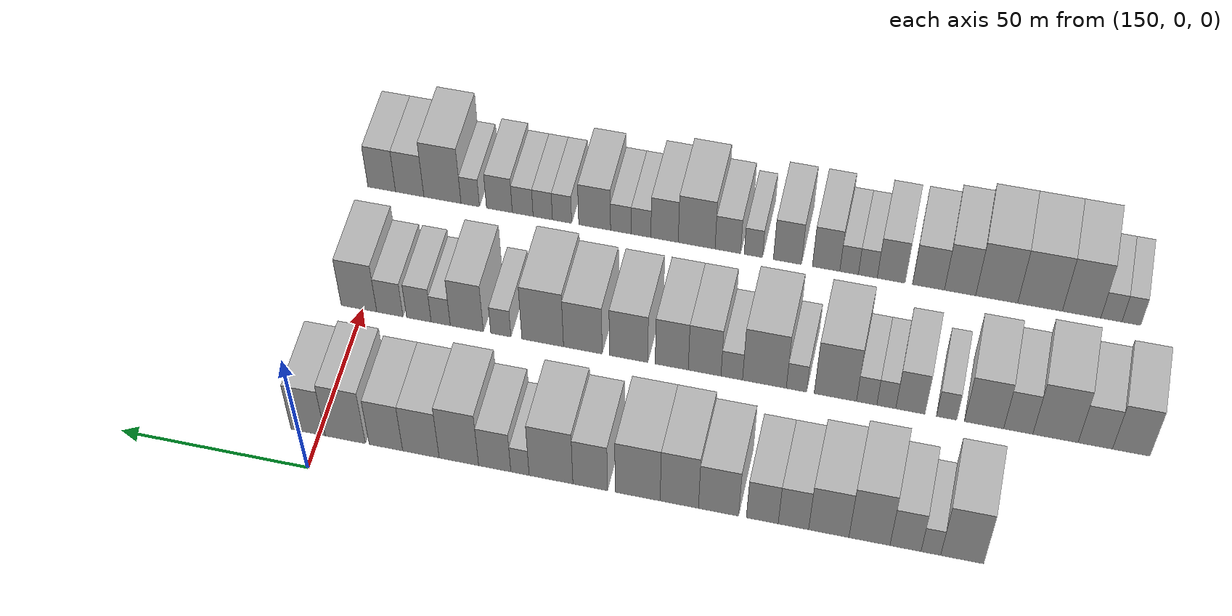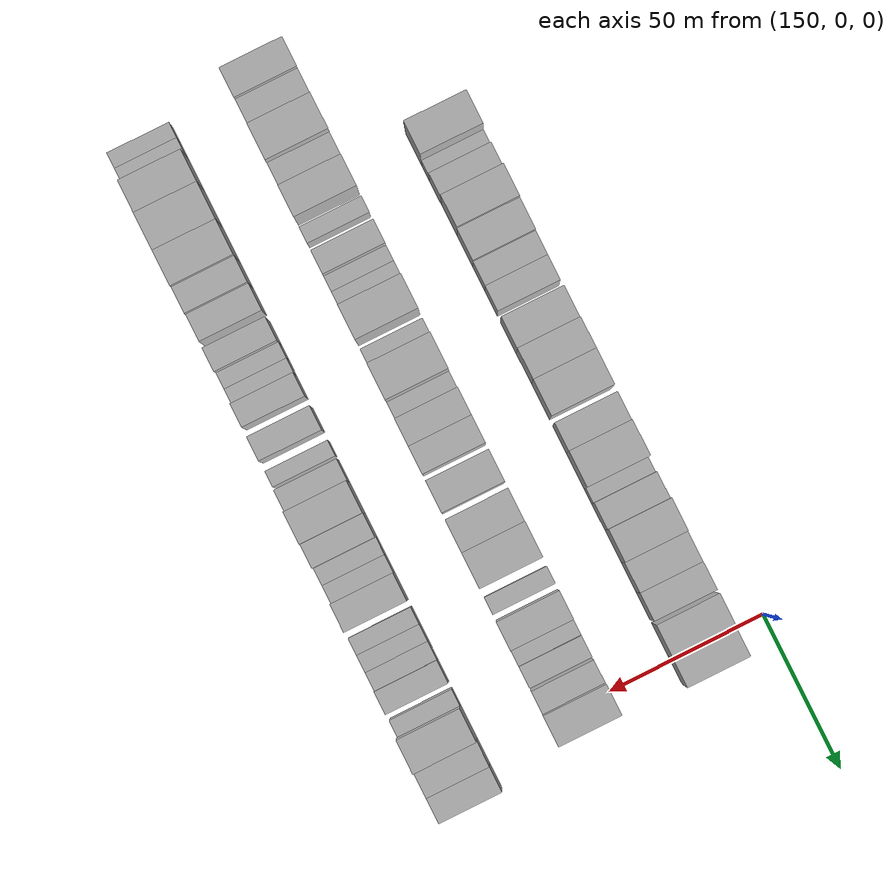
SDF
<sdf version="1.6">
 <world name="default">
  <model name="building_462">
   <static>1</static>
   <pose>170.0000 -166.5350 0 0.000000 0.000000 0.000000</pose>
   <link name="link">
    <pose>0 0 12.00 0 0 0</pose>
    <collision name="collision"><geometry><box><size>20.0000 10.7304 24.0000</size></box></geometry></collision>
    <visual name="visual">
     <cast_shadows>0</cast_shadows>
     <geometry><box><size>20.0000 10.7304 24.0000</size></box></geometry>
     <material>
      <script>
       <uri>model://HANNAS_wall/materials/scripts</uri>
       <uri>model://HANNAS_wall/materials/textures</uri>
       <name>vrc/HANNAS_wall</name>
      </script>
     </material>
    </visual>
   </link>
  </model>
  <model name="building_463">
   <static>1</static>
   <pose>170.0000 -158.7007 0 0.000000 0.000000 0.000000</pose>
   <link name="link">
    <pose>0 0 6.00 0 0 0</pose>
    <collision name="collision"><geometry><box><size>20.0000 4.9381 12.0000</size></box></geometry></collision>
    <visual name="visual">
     <cast_shadows>0</cast_shadows>
     <geometry><box><size>20.0000 4.9381 12.0000</size></box></geometry>
     <material>
      <script>
       <uri>model://HANNAS_wall/materials/scripts</uri>
       <uri>model://HANNAS_wall/materials/textures</uri>
       <name>vrc/HANNAS_wall</name>
      </script>
     </material>
    </visual>
   </link>
  </model>
  <model name="building_464">
   <static>1</static>
   <pose>170.0000 -152.3244 0 0.000000 0.000000 0.000000</pose>
   <link name="link">
    <pose>0 0 9.00 0 0 0</pose>
    <collision name="collision"><geometry><box><size>20.0000 7.8145 18.0000</size></box></geometry></collision>
    <visual name="visual">
     <cast_shadows>0</cast_shadows>
     <geometry><box><size>20.0000 7.8145 18.0000</size></box></geometry>
     <material>
      <script>
       <uri>model://HANNAS_wall/materials/scripts</uri>
       <uri>model://HANNAS_wall/materials/textures</uri>
       <name>vrc/HANNAS_wall</name>
      </script>
     </material>
    </visual>
   </link>
  </model>
  <model name="building_465">
   <static>1</static>
   <pose>170.0000 -143.2387 0 0.000000 0.000000 0.000000</pose>
   <link name="link">
    <pose>0 0 12.00 0 0 0</pose>
    <collision name="collision"><geometry><box><size>20.0000 10.3570 24.0000</size></box></geometry></collision>
    <visual name="visual">
     <cast_shadows>0</cast_shadows>
     <geometry><box><size>20.0000 10.3570 24.0000</size></box></geometry>
     <material>
      <script>
       <uri>model://HANNAS_wall/materials/scripts</uri>
       <uri>model://HANNAS_wall/materials/textures</uri>
       <name>vrc/HANNAS_wall</name>
      </script>
     </material>
    </visual>
   </link>
  </model>
  <model name="building_466">
   <static>1</static>
   <pose>170.0000 -132.9571 0 0.000000 0.000000 0.000000</pose>
   <link name="link">
    <pose>0 0 10.50 0 0 0</pose>
    <collision name="collision"><geometry><box><size>20.0000 10.2062 21.0000</size></box></geometry></collision>
    <visual name="visual">
     <cast_shadows>0</cast_shadows>
     <geometry><box><size>20.0000 10.2062 21.0000</size></box></geometry>
     <material>
      <script>
       <uri>model://HANNAS_wall/materials/scripts</uri>
       <uri>model://HANNAS_wall/materials/textures</uri>
       <name>vrc/HANNAS_wall</name>
      </script>
     </material>
    </visual>
   </link>
  </model>
  <model name="building_467">
   <static>1</static>
   <pose>170.0000 -123.9863 0 0.000000 0.000000 0.000000</pose>
   <link name="link">
    <pose>0 0 9.00 0 0 0</pose>
    <collision name="collision"><geometry><box><size>20.0000 7.7355 18.0000</size></box></geometry></collision>
    <visual name="visual">
     <cast_shadows>0</cast_shadows>
     <geometry><box><size>20.0000 7.7355 18.0000</size></box></geometry>
     <material>
      <script>
       <uri>model://HANNAS_wall/materials/scripts</uri>
       <uri>model://HANNAS_wall/materials/textures</uri>
       <name>vrc/HANNAS_wall</name>
      </script>
     </material>
    </visual>
   </link>
  </model>
  <model name="building_468">
   <static>1</static>
   <pose>170.0000 -116.0584 0 0.000000 0.000000 0.000000</pose>
   <link name="link">
    <pose>0 0 9.00 0 0 0</pose>
    <collision name="collision"><geometry><box><size>20.0000 8.1202 18.0000</size></box></geometry></collision>
    <visual name="visual">
     <cast_shadows>0</cast_shadows>
     <geometry><box><size>20.0000 8.1202 18.0000</size></box></geometry>
     <material>
      <script>
       <uri>model://HANNAS_wall/materials/scripts</uri>
       <uri>model://HANNAS_wall/materials/textures</uri>
       <name>vrc/HANNAS_wall</name>
      </script>
     </material>
    </visual>
   </link>
  </model>
  <model name="building_469">
   <static>1</static>
   <pose>170.0000 -104.8446 0 0.000000 0.000000 0.000000</pose>
   <link name="link">
    <pose>0 0 10.50 0 0 0</pose>
    <collision name="collision"><geometry><box><size>20.0000 10.3075 21.0000</size></box></geometry></collision>
    <visual name="visual">
     <cast_shadows>0</cast_shadows>
     <geometry><box><size>20.0000 10.3075 21.0000</size></box></geometry>
     <material>
      <script>
       <uri>model://HANNAS_wall/materials/scripts</uri>
       <uri>model://HANNAS_wall/materials/textures</uri>
       <name>vrc/HANNAS_wall</name>
      </script>
     </material>
    </visual>
   </link>
  </model>
  <model name="building_470">
   <static>1</static>
   <pose>170.0000 -94.7613 0 0.000000 0.000000 0.000000</pose>
   <link name="link">
    <pose>0 0 12.00 0 0 0</pose>
    <collision name="collision"><geometry><box><size>20.0000 9.8592 24.0000</size></box></geometry></collision>
    <visual name="visual">
     <cast_shadows>0</cast_shadows>
     <geometry><box><size>20.0000 9.8592 24.0000</size></box></geometry>
     <material>
      <script>
       <uri>model://HANNAS_wall/materials/scripts</uri>
       <uri>model://HANNAS_wall/materials/textures</uri>
       <name>vrc/HANNAS_wall</name>
      </script>
     </material>
    </visual>
   </link>
  </model>
  <model name="building_471">
   <static>1</static>
   <pose>170.0000 -84.0153 0 0.000000 0.000000 0.000000</pose>
   <link name="link">
    <pose>0 0 12.00 0 0 0</pose>
    <collision name="collision"><geometry><box><size>20.0000 11.6328 24.0000</size></box></geometry></collision>
    <visual name="visual">
     <cast_shadows>0</cast_shadows>
     <geometry><box><size>20.0000 11.6328 24.0000</size></box></geometry>
     <material>
      <script>
       <uri>model://HANNAS_wall/materials/scripts</uri>
       <uri>model://HANNAS_wall/materials/textures</uri>
       <name>vrc/HANNAS_wall</name>
      </script>
     </material>
    </visual>
   </link>
  </model>
  <model name="building_472">
   <static>1</static>
   <pose>170.0000 -71.6988 0 0.000000 0.000000 0.000000</pose>
   <link name="link">
    <pose>0 0 10.50 0 0 0</pose>
    <collision name="collision"><geometry><box><size>20.0000 9.0001 21.0000</size></box></geometry></collision>
    <visual name="visual">
     <cast_shadows>0</cast_shadows>
     <geometry><box><size>20.0000 9.0001 21.0000</size></box></geometry>
     <material>
      <script>
       <uri>model://HANNAS_wall/materials/scripts</uri>
       <uri>model://HANNAS_wall/materials/textures</uri>
       <name>vrc/HANNAS_wall</name>
      </script>
     </material>
    </visual>
   </link>
  </model>
  <model name="building_473">
   <static>1</static>
   <pose>170.0000 -61.4677 0 0.000000 0.000000 0.000000</pose>
   <link name="link">
    <pose>0 0 12.00 0 0 0</pose>
    <collision name="collision"><geometry><box><size>20.0000 11.4622 24.0000</size></box></geometry></collision>
    <visual name="visual">
     <cast_shadows>0</cast_shadows>
     <geometry><box><size>20.0000 11.4622 24.0000</size></box></geometry>
     <material>
      <script>
       <uri>model://HANNAS_wall/materials/scripts</uri>
       <uri>model://HANNAS_wall/materials/textures</uri>
       <name>vrc/HANNAS_wall</name>
      </script>
     </material>
    </visual>
   </link>
  </model>
  <model name="building_474">
   <static>1</static>
   <pose>170.0000 -53.3344 0 0.000000 0.000000 0.000000</pose>
   <link name="link">
    <pose>0 0 6.00 0 0 0</pose>
    <collision name="collision"><geometry><box><size>20.0000 4.8044 12.0000</size></box></geometry></collision>
    <visual name="visual">
     <cast_shadows>0</cast_shadows>
     <geometry><box><size>20.0000 4.8044 12.0000</size></box></geometry>
     <material>
      <script>
       <uri>model://HANNAS_wall/materials/scripts</uri>
       <uri>model://HANNAS_wall/materials/textures</uri>
       <name>vrc/HANNAS_wall</name>
      </script>
     </material>
    </visual>
   </link>
  </model>
  <model name="building_475">
   <static>1</static>
   <pose>170.0000 -46.6991 0 0.000000 0.000000 0.000000</pose>
   <link name="link">
    <pose>0 0 9.00 0 0 0</pose>
    <collision name="collision"><geometry><box><size>20.0000 8.4661 18.0000</size></box></geometry></collision>
    <visual name="visual">
     <cast_shadows>0</cast_shadows>
     <geometry><box><size>20.0000 8.4661 18.0000</size></box></geometry>
     <material>
      <script>
       <uri>model://HANNAS_wall/materials/scripts</uri>
       <uri>model://HANNAS_wall/materials/textures</uri>
       <name>vrc/HANNAS_wall</name>
      </script>
     </material>
    </visual>
   </link>
  </model>
  <model name="building_476">
   <static>1</static>
   <pose>170.0000 -37.2568 0 0.000000 0.000000 0.000000</pose>
   <link name="link">
    <pose>0 0 12.00 0 0 0</pose>
    <collision name="collision"><geometry><box><size>20.0000 10.4187 24.0000</size></box></geometry></collision>
    <visual name="visual">
     <cast_shadows>0</cast_shadows>
     <geometry><box><size>20.0000 10.4187 24.0000</size></box></geometry>
     <material>
      <script>
       <uri>model://HANNAS_wall/materials/scripts</uri>
       <uri>model://HANNAS_wall/materials/textures</uri>
       <name>vrc/HANNAS_wall</name>
      </script>
     </material>
    </visual>
   </link>
  </model>
  <model name="building_477">
   <static>1</static>
   <pose>170.0000 -27.2084 0 0.000000 0.000000 0.000000</pose>
   <link name="link">
    <pose>0 0 10.50 0 0 0</pose>
    <collision name="collision"><geometry><box><size>20.0000 9.6780 21.0000</size></box></geometry></collision>
    <visual name="visual">
     <cast_shadows>0</cast_shadows>
     <geometry><box><size>20.0000 9.6780 21.0000</size></box></geometry>
     <material>
      <script>
       <uri>model://HANNAS_wall/materials/scripts</uri>
       <uri>model://HANNAS_wall/materials/textures</uri>
       <name>vrc/HANNAS_wall</name>
      </script>
     </material>
    </visual>
   </link>
  </model>
  <model name="building_478">
   <static>1</static>
   <pose>170.0000 -17.8995 0 0.000000 0.000000 0.000000</pose>
   <link name="link">
    <pose>0 0 10.50 0 0 0</pose>
    <collision name="collision"><geometry><box><size>20.0000 8.9398 21.0000</size></box></geometry></collision>
    <visual name="visual">
     <cast_shadows>0</cast_shadows>
     <geometry><box><size>20.0000 8.9398 21.0000</size></box></geometry>
     <material>
      <script>
       <uri>model://HANNAS_wall/materials/scripts</uri>
       <uri>model://HANNAS_wall/materials/textures</uri>
       <name>vrc/HANNAS_wall</name>
      </script>
     </material>
    </visual>
   </link>
  </model>
  <model name="building_479">
   <static>1</static>
   <pose>170.0000 -7.0554 0 0.000000 0.000000 0.000000</pose>
   <link name="link">
    <pose>0 0 12.00 0 0 0</pose>
    <collision name="collision"><geometry><box><size>20.0000 10.7483 24.0000</size></box></geometry></collision>
    <visual name="visual">
     <cast_shadows>0</cast_shadows>
     <geometry><box><size>20.0000 10.7483 24.0000</size></box></geometry>
     <material>
      <script>
       <uri>model://HANNAS_wall/materials/scripts</uri>
       <uri>model://HANNAS_wall/materials/textures</uri>
       <name>vrc/HANNAS_wall</name>
      </script>
     </material>
    </visual>
   </link>
  </model>
  <model name="building_480">
   <static>1</static>
   <pose>170.0000 2.9032 0 0.000000 0.000000 0.000000</pose>
   <link name="link">
    <pose>0 0 10.50 0 0 0</pose>
    <collision name="collision"><geometry><box><size>20.0000 9.1689 21.0000</size></box></geometry></collision>
    <visual name="visual">
     <cast_shadows>0</cast_shadows>
     <geometry><box><size>20.0000 9.1689 21.0000</size></box></geometry>
     <material>
      <script>
       <uri>model://HANNAS_wall/materials/scripts</uri>
       <uri>model://HANNAS_wall/materials/textures</uri>
       <name>vrc/HANNAS_wall</name>
      </script>
     </material>
    </visual>
   </link>
  </model>
  <model name="building_593">
   <static>1</static>
   <pose>210.0000 -204.7215 0 0.000000 0.000000 0.000000</pose>
   <link name="link">
    <pose>0 0 10.50 0 0 0</pose>
    <collision name="collision"><geometry><box><size>20.0000 9.5605 21.0000</size></box></geometry></collision>
    <visual name="visual">
     <cast_shadows>0</cast_shadows>
     <geometry><box><size>20.0000 9.5605 21.0000</size></box></geometry>
     <material>
      <script>
       <uri>model://HANNAS_wall/materials/scripts</uri>
       <uri>model://HANNAS_wall/materials/textures</uri>
       <name>vrc/HANNAS_wall</name>
      </script>
     </material>
    </visual>
   </link>
  </model>
  <model name="building_594">
   <static>1</static>
   <pose>210.0000 -195.5447 0 0.000000 0.000000 0.000000</pose>
   <link name="link">
    <pose>0 0 9.00 0 0 0</pose>
    <collision name="collision"><geometry><box><size>20.0000 8.7932 18.0000</size></box></geometry></collision>
    <visual name="visual">
     <cast_shadows>0</cast_shadows>
     <geometry><box><size>20.0000 8.7932 18.0000</size></box></geometry>
     <material>
      <script>
       <uri>model://HANNAS_wall/materials/scripts</uri>
       <uri>model://HANNAS_wall/materials/textures</uri>
       <name>vrc/HANNAS_wall</name>
      </script>
     </material>
    </visual>
   </link>
  </model>
  <model name="building_595">
   <static>1</static>
   <pose>210.0000 -185.3082 0 0.000000 0.000000 0.000000</pose>
   <link name="link">
    <pose>0 0 12.00 0 0 0</pose>
    <collision name="collision"><geometry><box><size>20.0000 11.6798 24.0000</size></box></geometry></collision>
    <visual name="visual">
     <cast_shadows>0</cast_shadows>
     <geometry><box><size>20.0000 11.6798 24.0000</size></box></geometry>
     <material>
      <script>
       <uri>model://HANNAS_wall/materials/scripts</uri>
       <uri>model://HANNAS_wall/materials/textures</uri>
       <name>vrc/HANNAS_wall</name>
      </script>
     </material>
    </visual>
   </link>
  </model>
  <model name="building_596">
   <static>1</static>
   <pose>210.0000 -175.6978 0 0.000000 0.000000 0.000000</pose>
   <link name="link">
    <pose>0 0 9.00 0 0 0</pose>
    <collision name="collision"><geometry><box><size>20.0000 7.5409 18.0000</size></box></geometry></collision>
    <visual name="visual">
     <cast_shadows>0</cast_shadows>
     <geometry><box><size>20.0000 7.5409 18.0000</size></box></geometry>
     <material>
      <script>
       <uri>model://HANNAS_wall/materials/scripts</uri>
       <uri>model://HANNAS_wall/materials/textures</uri>
       <name>vrc/HANNAS_wall</name>
      </script>
     </material>
    </visual>
   </link>
  </model>
  <model name="building_597">
   <static>1</static>
   <pose>210.0000 -166.8463 0 0.000000 0.000000 0.000000</pose>
   <link name="link">
    <pose>0 0 10.50 0 0 0</pose>
    <collision name="collision"><geometry><box><size>20.0000 10.1621 21.0000</size></box></geometry></collision>
    <visual name="visual">
     <cast_shadows>0</cast_shadows>
     <geometry><box><size>20.0000 10.1621 21.0000</size></box></geometry>
     <material>
      <script>
       <uri>model://HANNAS_wall/materials/scripts</uri>
       <uri>model://HANNAS_wall/materials/textures</uri>
       <name>vrc/HANNAS_wall</name>
      </script>
     </material>
    </visual>
   </link>
  </model>
  <model name="building_598">
   <static>1</static>
   <pose>210.0000 -157.1187 0 0.000000 0.000000 0.000000</pose>
   <link name="link">
    <pose>0 0 6.00 0 0 0</pose>
    <collision name="collision"><geometry><box><size>20.0000 5.2932 12.0000</size></box></geometry></collision>
    <visual name="visual">
     <cast_shadows>0</cast_shadows>
     <geometry><box><size>20.0000 5.2932 12.0000</size></box></geometry>
     <material>
      <script>
       <uri>model://HANNAS_wall/materials/scripts</uri>
       <uri>model://HANNAS_wall/materials/textures</uri>
       <name>vrc/HANNAS_wall</name>
      </script>
     </material>
    </visual>
   </link>
  </model>
  <model name="building_599">
   <static>1</static>
   <pose>210.0000 -147.6497 0 0.000000 0.000000 0.000000</pose>
   <link name="link">
    <pose>0 0 9.00 0 0 0</pose>
    <collision name="collision"><geometry><box><size>20.0000 7.6448 18.0000</size></box></geometry></collision>
    <visual name="visual">
     <cast_shadows>0</cast_shadows>
     <geometry><box><size>20.0000 7.6448 18.0000</size></box></geometry>
     <material>
      <script>
       <uri>model://HANNAS_wall/materials/scripts</uri>
       <uri>model://HANNAS_wall/materials/textures</uri>
       <name>vrc/HANNAS_wall</name>
      </script>
     </material>
    </visual>
   </link>
  </model>
  <model name="building_600">
   <static>1</static>
   <pose>210.0000 -141.3430 0 0.000000 0.000000 0.000000</pose>
   <link name="link">
    <pose>0 0 6.00 0 0 0</pose>
    <collision name="collision"><geometry><box><size>20.0000 4.9686 12.0000</size></box></geometry></collision>
    <visual name="visual">
     <cast_shadows>0</cast_shadows>
     <geometry><box><size>20.0000 4.9686 12.0000</size></box></geometry>
     <material>
      <script>
       <uri>model://HANNAS_wall/materials/scripts</uri>
       <uri>model://HANNAS_wall/materials/textures</uri>
       <name>vrc/HANNAS_wall</name>
      </script>
     </material>
    </visual>
   </link>
  </model>
  <model name="building_601">
   <static>1</static>
   <pose>210.0000 -136.1842 0 0.000000 0.000000 0.000000</pose>
   <link name="link">
    <pose>0 0 6.00 0 0 0</pose>
    <collision name="collision"><geometry><box><size>20.0000 5.3491 12.0000</size></box></geometry></collision>
    <visual name="visual">
     <cast_shadows>0</cast_shadows>
     <geometry><box><size>20.0000 5.3491 12.0000</size></box></geometry>
     <material>
      <script>
       <uri>model://HANNAS_wall/materials/scripts</uri>
       <uri>model://HANNAS_wall/materials/textures</uri>
       <name>vrc/HANNAS_wall</name>
      </script>
     </material>
    </visual>
   </link>
  </model>
  <model name="building_602">
   <static>1</static>
   <pose>210.0000 -127.9387 0 0.000000 0.000000 0.000000</pose>
   <link name="link">
    <pose>0 0 12.00 0 0 0</pose>
    <collision name="collision"><geometry><box><size>20.0000 11.1418 24.0000</size></box></geometry></collision>
    <visual name="visual">
     <cast_shadows>0</cast_shadows>
     <geometry><box><size>20.0000 11.1418 24.0000</size></box></geometry>
     <material>
      <script>
       <uri>model://HANNAS_wall/materials/scripts</uri>
       <uri>model://HANNAS_wall/materials/textures</uri>
       <name>vrc/HANNAS_wall</name>
      </script>
     </material>
    </visual>
   </link>
  </model>
  <model name="building_603">
   <static>1</static>
   <pose>210.0000 -117.6690 0 0.000000 0.000000 0.000000</pose>
   <link name="link">
    <pose>0 0 6.00 0 0 0</pose>
    <collision name="collision"><geometry><box><size>20.0000 5.3976 12.0000</size></box></geometry></collision>
    <visual name="visual">
     <cast_shadows>0</cast_shadows>
     <geometry><box><size>20.0000 5.3976 12.0000</size></box></geometry>
     <material>
      <script>
       <uri>model://HANNAS_wall/materials/scripts</uri>
       <uri>model://HANNAS_wall/materials/textures</uri>
       <name>vrc/HANNAS_wall</name>
      </script>
     </material>
    </visual>
   </link>
  </model>
  <model name="building_604">
   <static>1</static>
   <pose>210.0000 -109.1534 0 0.000000 0.000000 0.000000</pose>
   <link name="link">
    <pose>0 0 12.00 0 0 0</pose>
    <collision name="collision"><geometry><box><size>20.0000 11.6335 24.0000</size></box></geometry></collision>
    <visual name="visual">
     <cast_shadows>0</cast_shadows>
     <geometry><box><size>20.0000 11.6335 24.0000</size></box></geometry>
     <material>
      <script>
       <uri>model://HANNAS_wall/materials/scripts</uri>
       <uri>model://HANNAS_wall/materials/textures</uri>
       <name>vrc/HANNAS_wall</name>
      </script>
     </material>
    </visual>
   </link>
  </model>
  <model name="building_605">
   <static>1</static>
   <pose>210.0000 -100.4633 0 0.000000 0.000000 0.000000</pose>
   <link name="link">
    <pose>0 0 6.00 0 0 0</pose>
    <collision name="collision"><geometry><box><size>20.0000 5.7466 12.0000</size></box></geometry></collision>
    <visual name="visual">
     <cast_shadows>0</cast_shadows>
     <geometry><box><size>20.0000 5.7466 12.0000</size></box></geometry>
     <material>
      <script>
       <uri>model://HANNAS_wall/materials/scripts</uri>
       <uri>model://HANNAS_wall/materials/textures</uri>
       <name>vrc/HANNAS_wall</name>
      </script>
     </material>
    </visual>
   </link>
  </model>
  <model name="building_606">
   <static>1</static>
   <pose>210.0000 -93.2059 0 0.000000 0.000000 0.000000</pose>
   <link name="link">
    <pose>0 0 10.50 0 0 0</pose>
    <collision name="collision"><geometry><box><size>20.0000 8.7683 21.0000</size></box></geometry></collision>
    <visual name="visual">
     <cast_shadows>0</cast_shadows>
     <geometry><box><size>20.0000 8.7683 21.0000</size></box></geometry>
     <material>
      <script>
       <uri>model://HANNAS_wall/materials/scripts</uri>
       <uri>model://HANNAS_wall/materials/textures</uri>
       <name>vrc/HANNAS_wall</name>
      </script>
     </material>
    </visual>
   </link>
  </model>
  <model name="building_607">
   <static>1</static>
   <pose>210.0000 -84.3900 0 0.000000 0.000000 0.000000</pose>
   <link name="link">
    <pose>0 0 10.50 0 0 0</pose>
    <collision name="collision"><geometry><box><size>20.0000 8.8634 21.0000</size></box></geometry></collision>
    <visual name="visual">
     <cast_shadows>0</cast_shadows>
     <geometry><box><size>20.0000 8.8634 21.0000</size></box></geometry>
     <material>
      <script>
       <uri>model://HANNAS_wall/materials/scripts</uri>
       <uri>model://HANNAS_wall/materials/textures</uri>
       <name>vrc/HANNAS_wall</name>
      </script>
     </material>
    </visual>
   </link>
  </model>
  <model name="building_608">
   <static>1</static>
   <pose>210.0000 -72.7926 0 0.000000 0.000000 0.000000</pose>
   <link name="link">
    <pose>0 0 10.50 0 0 0</pose>
    <collision name="collision"><geometry><box><size>20.0000 10.3315 21.0000</size></box></geometry></collision>
    <visual name="visual">
     <cast_shadows>0</cast_shadows>
     <geometry><box><size>20.0000 10.3315 21.0000</size></box></geometry>
     <material>
      <script>
       <uri>model://HANNAS_wall/materials/scripts</uri>
       <uri>model://HANNAS_wall/materials/textures</uri>
       <name>vrc/HANNAS_wall</name>
      </script>
     </material>
    </visual>
   </link>
  </model>
  <model name="building_609">
   <static>1</static>
   <pose>210.0000 -60.3824 0 0.000000 0.000000 0.000000</pose>
   <link name="link">
    <pose>0 0 10.50 0 0 0</pose>
    <collision name="collision"><geometry><box><size>20.0000 10.4888 21.0000</size></box></geometry></collision>
    <visual name="visual">
     <cast_shadows>0</cast_shadows>
     <geometry><box><size>20.0000 10.4888 21.0000</size></box></geometry>
     <material>
      <script>
       <uri>model://HANNAS_wall/materials/scripts</uri>
       <uri>model://HANNAS_wall/materials/textures</uri>
       <name>vrc/HANNAS_wall</name>
      </script>
     </material>
    </visual>
   </link>
  </model>
  <model name="building_610">
   <static>1</static>
   <pose>210.0000 -49.4585 0 0.000000 0.000000 0.000000</pose>
   <link name="link">
    <pose>0 0 12.00 0 0 0</pose>
    <collision name="collision"><geometry><box><size>20.0000 11.3592 24.0000</size></box></geometry></collision>
    <visual name="visual">
     <cast_shadows>0</cast_shadows>
     <geometry><box><size>20.0000 11.3592 24.0000</size></box></geometry>
     <material>
      <script>
       <uri>model://HANNAS_wall/materials/scripts</uri>
       <uri>model://HANNAS_wall/materials/textures</uri>
       <name>vrc/HANNAS_wall</name>
      </script>
     </material>
    </visual>
   </link>
  </model>
  <model name="building_611">
   <static>1</static>
   <pose>210.0000 -38.0156 0 0.000000 0.000000 0.000000</pose>
   <link name="link">
    <pose>0 0 6.00 0 0 0</pose>
    <collision name="collision"><geometry><box><size>20.0000 5.5266 12.0000</size></box></geometry></collision>
    <visual name="visual">
     <cast_shadows>0</cast_shadows>
     <geometry><box><size>20.0000 5.5266 12.0000</size></box></geometry>
     <material>
      <script>
       <uri>model://HANNAS_wall/materials/scripts</uri>
       <uri>model://HANNAS_wall/materials/textures</uri>
       <name>vrc/HANNAS_wall</name>
      </script>
     </material>
    </visual>
   </link>
  </model>
  <model name="building_612">
   <static>1</static>
   <pose>210.0000 -28.6954 0 0.000000 0.000000 0.000000</pose>
   <link name="link">
    <pose>0 0 10.50 0 0 0</pose>
    <collision name="collision"><geometry><box><size>20.0000 9.1138 21.0000</size></box></geometry></collision>
    <visual name="visual">
     <cast_shadows>0</cast_shadows>
     <geometry><box><size>20.0000 9.1138 21.0000</size></box></geometry>
     <material>
      <script>
       <uri>model://HANNAS_wall/materials/scripts</uri>
       <uri>model://HANNAS_wall/materials/textures</uri>
       <name>vrc/HANNAS_wall</name>
      </script>
     </material>
    </visual>
   </link>
  </model>
  <model name="building_613">
   <static>1</static>
   <pose>210.0000 -21.5005 0 0.000000 0.000000 0.000000</pose>
   <link name="link">
    <pose>0 0 6.00 0 0 0</pose>
    <collision name="collision"><geometry><box><size>20.0000 5.2760 12.0000</size></box></geometry></collision>
    <visual name="visual">
     <cast_shadows>0</cast_shadows>
     <geometry><box><size>20.0000 5.2760 12.0000</size></box></geometry>
     <material>
      <script>
       <uri>model://HANNAS_wall/materials/scripts</uri>
       <uri>model://HANNAS_wall/materials/textures</uri>
       <name>vrc/HANNAS_wall</name>
      </script>
     </material>
    </visual>
   </link>
  </model>
  <model name="building_614">
   <static>1</static>
   <pose>210.0000 -15.4656 0 0.000000 0.000000 0.000000</pose>
   <link name="link">
    <pose>0 0 7.50 0 0 0</pose>
    <collision name="collision"><geometry><box><size>20.0000 6.7937 15.0000</size></box></geometry></collision>
    <visual name="visual">
     <cast_shadows>0</cast_shadows>
     <geometry><box><size>20.0000 6.7937 15.0000</size></box></geometry>
     <material>
      <script>
       <uri>model://HANNAS_wall/materials/scripts</uri>
       <uri>model://HANNAS_wall/materials/textures</uri>
       <name>vrc/HANNAS_wall</name>
      </script>
     </material>
    </visual>
   </link>
  </model>
  <model name="building_615">
   <static>1</static>
   <pose>210.0000 -7.4237 0 0.000000 0.000000 0.000000</pose>
   <link name="link">
    <pose>0 0 7.50 0 0 0</pose>
    <collision name="collision"><geometry><box><size>20.0000 7.2901 15.0000</size></box></geometry></collision>
    <visual name="visual">
     <cast_shadows>0</cast_shadows>
     <geometry><box><size>20.0000 7.2901 15.0000</size></box></geometry>
     <material>
      <script>
       <uri>model://HANNAS_wall/materials/scripts</uri>
       <uri>model://HANNAS_wall/materials/textures</uri>
       <name>vrc/HANNAS_wall</name>
      </script>
     </material>
    </visual>
   </link>
  </model>
  <model name="building_616">
   <static>1</static>
   <pose>210.0000 1.1630 0 0.000000 0.000000 0.000000</pose>
   <link name="link">
    <pose>0 0 10.50 0 0 0</pose>
    <collision name="collision"><geometry><box><size>20.0000 9.8833 21.0000</size></box></geometry></collision>
    <visual name="visual">
     <cast_shadows>0</cast_shadows>
     <geometry><box><size>20.0000 9.8833 21.0000</size></box></geometry>
     <material>
      <script>
       <uri>model://HANNAS_wall/materials/scripts</uri>
       <uri>model://HANNAS_wall/materials/textures</uri>
       <name>vrc/HANNAS_wall</name>
      </script>
     </material>
    </visual>
   </link>
  </model>
  <model name="building_739">
   <static>1</static>
   <pose>250.0000 -201.1632 0 0.000000 0.000000 0.000000</pose>
   <link name="link">
    <pose>0 0 6.00 0 0 0</pose>
    <collision name="collision"><geometry><box><size>20.0000 4.9992 12.0000</size></box></geometry></collision>
    <visual name="visual">
     <cast_shadows>0</cast_shadows>
     <geometry><box><size>20.0000 4.9992 12.0000</size></box></geometry>
     <material>
      <script>
       <uri>model://HANNAS_wall/materials/scripts</uri>
       <uri>model://HANNAS_wall/materials/textures</uri>
       <name>vrc/HANNAS_wall</name>
      </script>
     </material>
    </visual>
   </link>
  </model>
  <model name="building_740">
   <static>1</static>
   <pose>250.0000 -195.8553 0 0.000000 0.000000 0.000000</pose>
   <link name="link">
    <pose>0 0 6.00 0 0 0</pose>
    <collision name="collision"><geometry><box><size>20.0000 5.6166 12.0000</size></box></geometry></collision>
    <visual name="visual">
     <cast_shadows>0</cast_shadows>
     <geometry><box><size>20.0000 5.6166 12.0000</size></box></geometry>
     <material>
      <script>
       <uri>model://HANNAS_wall/materials/scripts</uri>
       <uri>model://HANNAS_wall/materials/textures</uri>
       <name>vrc/HANNAS_wall</name>
      </script>
     </material>
    </visual>
   </link>
  </model>
  <model name="building_741">
   <static>1</static>
   <pose>250.0000 -187.9091 0 0.000000 0.000000 0.000000</pose>
   <link name="link">
    <pose>0 0 12.00 0 0 0</pose>
    <collision name="collision"><geometry><box><size>20.0000 10.2757 24.0000</size></box></geometry></collision>
    <visual name="visual">
     <cast_shadows>0</cast_shadows>
     <geometry><box><size>20.0000 10.2757 24.0000</size></box></geometry>
     <material>
      <script>
       <uri>model://HANNAS_wall/materials/scripts</uri>
       <uri>model://HANNAS_wall/materials/textures</uri>
       <name>vrc/HANNAS_wall</name>
      </script>
     </material>
    </visual>
   </link>
  </model>
  <model name="building_742">
   <static>1</static>
   <pose>250.0000 -176.7878 0 0.000000 0.000000 0.000000</pose>
   <link name="link">
    <pose>0 0 12.00 0 0 0</pose>
    <collision name="collision"><geometry><box><size>20.0000 11.9669 24.0000</size></box></geometry></collision>
    <visual name="visual">
     <cast_shadows>0</cast_shadows>
     <geometry><box><size>20.0000 11.9669 24.0000</size></box></geometry>
     <material>
      <script>
       <uri>model://HANNAS_wall/materials/scripts</uri>
       <uri>model://HANNAS_wall/materials/textures</uri>
       <name>vrc/HANNAS_wall</name>
      </script>
     </material>
    </visual>
   </link>
  </model>
  <model name="building_743">
   <static>1</static>
   <pose>250.0000 -165.1405 0 0.000000 0.000000 0.000000</pose>
   <link name="link">
    <pose>0 0 12.00 0 0 0</pose>
    <collision name="collision"><geometry><box><size>20.0000 11.3279 24.0000</size></box></geometry></collision>
    <visual name="visual">
     <cast_shadows>0</cast_shadows>
     <geometry><box><size>20.0000 11.3279 24.0000</size></box></geometry>
     <material>
      <script>
       <uri>model://HANNAS_wall/materials/scripts</uri>
       <uri>model://HANNAS_wall/materials/textures</uri>
       <name>vrc/HANNAS_wall</name>
      </script>
     </material>
    </visual>
   </link>
  </model>
  <model name="building_744">
   <static>1</static>
   <pose>250.0000 -155.2492 0 0.000000 0.000000 0.000000</pose>
   <link name="link">
    <pose>0 0 10.50 0 0 0</pose>
    <collision name="collision"><geometry><box><size>20.0000 8.4546 21.0000</size></box></geometry></collision>
    <visual name="visual">
     <cast_shadows>0</cast_shadows>
     <geometry><box><size>20.0000 8.4546 21.0000</size></box></geometry>
     <material>
      <script>
       <uri>model://HANNAS_wall/materials/scripts</uri>
       <uri>model://HANNAS_wall/materials/textures</uri>
       <name>vrc/HANNAS_wall</name>
      </script>
     </material>
    </visual>
   </link>
  </model>
  <model name="building_745">
   <static>1</static>
   <pose>250.0000 -146.6820 0 0.000000 0.000000 0.000000</pose>
   <link name="link">
    <pose>0 0 9.00 0 0 0</pose>
    <collision name="collision"><geometry><box><size>20.0000 8.6797 18.0000</size></box></geometry></collision>
    <visual name="visual">
     <cast_shadows>0</cast_shadows>
     <geometry><box><size>20.0000 8.6797 18.0000</size></box></geometry>
     <material>
      <script>
       <uri>model://HANNAS_wall/materials/scripts</uri>
       <uri>model://HANNAS_wall/materials/textures</uri>
       <name>vrc/HANNAS_wall</name>
      </script>
     </material>
    </visual>
   </link>
  </model>
  <model name="building_746">
   <static>1</static>
   <pose>250.0000 -136.5357 0 0.000000 0.000000 0.000000</pose>
   <link name="link">
    <pose>0 0 9.00 0 0 0</pose>
    <collision name="collision"><geometry><box><size>20.0000 7.6131 18.0000</size></box></geometry></collision>
    <visual name="visual">
     <cast_shadows>0</cast_shadows>
     <geometry><box><size>20.0000 7.6131 18.0000</size></box></geometry>
     <material>
      <script>
       <uri>model://HANNAS_wall/materials/scripts</uri>
       <uri>model://HANNAS_wall/materials/textures</uri>
       <name>vrc/HANNAS_wall</name>
      </script>
     </material>
    </visual>
   </link>
  </model>
  <model name="building_747">
   <static>1</static>
   <pose>250.0000 -130.1519 0 0.000000 0.000000 0.000000</pose>
   <link name="link">
    <pose>0 0 6.00 0 0 0</pose>
    <collision name="collision"><geometry><box><size>20.0000 5.1544 12.0000</size></box></geometry></collision>
    <visual name="visual">
     <cast_shadows>0</cast_shadows>
     <geometry><box><size>20.0000 5.1544 12.0000</size></box></geometry>
     <material>
      <script>
       <uri>model://HANNAS_wall/materials/scripts</uri>
       <uri>model://HANNAS_wall/materials/textures</uri>
       <name>vrc/HANNAS_wall</name>
      </script>
     </material>
    </visual>
   </link>
  </model>
  <model name="building_748">
   <static>1</static>
   <pose>250.0000 -125.0317 0 0.000000 0.000000 0.000000</pose>
   <link name="link">
    <pose>0 0 6.00 0 0 0</pose>
    <collision name="collision"><geometry><box><size>20.0000 5.0859 12.0000</size></box></geometry></collision>
    <visual name="visual">
     <cast_shadows>0</cast_shadows>
     <geometry><box><size>20.0000 5.0859 12.0000</size></box></geometry>
     <material>
      <script>
       <uri>model://HANNAS_wall/materials/scripts</uri>
       <uri>model://HANNAS_wall/materials/textures</uri>
       <name>vrc/HANNAS_wall</name>
      </script>
     </material>
    </visual>
   </link>
  </model>
  <model name="building_749">
   <static>1</static>
   <pose>250.0000 -118.7233 0 0.000000 0.000000 0.000000</pose>
   <link name="link">
    <pose>0 0 9.00 0 0 0</pose>
    <collision name="collision"><geometry><box><size>20.0000 7.5308 18.0000</size></box></geometry></collision>
    <visual name="visual">
     <cast_shadows>0</cast_shadows>
     <geometry><box><size>20.0000 7.5308 18.0000</size></box></geometry>
     <material>
      <script>
       <uri>model://HANNAS_wall/materials/scripts</uri>
       <uri>model://HANNAS_wall/materials/textures</uri>
       <name>vrc/HANNAS_wall</name>
      </script>
     </material>
    </visual>
   </link>
  </model>
  <model name="building_750">
   <static>1</static>
   <pose>250.0000 -108.0839 0 0.000000 0.000000 0.000000</pose>
   <link name="link">
    <pose>0 0 9.00 0 0 0</pose>
    <collision name="collision"><geometry><box><size>20.0000 7.7480 18.0000</size></box></geometry></collision>
    <visual name="visual">
     <cast_shadows>0</cast_shadows>
     <geometry><box><size>20.0000 7.7480 18.0000</size></box></geometry>
     <material>
      <script>
       <uri>model://HANNAS_wall/materials/scripts</uri>
       <uri>model://HANNAS_wall/materials/textures</uri>
       <name>vrc/HANNAS_wall</name>
      </script>
     </material>
    </visual>
   </link>
  </model>
  <model name="building_751">
   <static>1</static>
   <pose>250.0000 -98.6701 0 0.000000 0.000000 0.000000</pose>
   <link name="link">
    <pose>0 0 6.00 0 0 0</pose>
    <collision name="collision"><geometry><box><size>20.0000 5.0796 12.0000</size></box></geometry></collision>
    <visual name="visual">
     <cast_shadows>0</cast_shadows>
     <geometry><box><size>20.0000 5.0796 12.0000</size></box></geometry>
     <material>
      <script>
       <uri>model://HANNAS_wall/materials/scripts</uri>
       <uri>model://HANNAS_wall/materials/textures</uri>
       <name>vrc/HANNAS_wall</name>
      </script>
     </material>
    </visual>
   </link>
  </model>
  <model name="building_752">
   <static>1</static>
   <pose>250.0000 -91.5833 0 0.000000 0.000000 0.000000</pose>
   <link name="link">
    <pose>0 0 7.50 0 0 0</pose>
    <collision name="collision"><geometry><box><size>20.0000 7.0940 15.0000</size></box></geometry></collision>
    <visual name="visual">
     <cast_shadows>0</cast_shadows>
     <geometry><box><size>20.0000 7.0940 15.0000</size></box></geometry>
     <material>
      <script>
       <uri>model://HANNAS_wall/materials/scripts</uri>
       <uri>model://HANNAS_wall/materials/textures</uri>
       <name>vrc/HANNAS_wall</name>
      </script>
     </material>
    </visual>
   </link>
  </model>
  <model name="building_753">
   <static>1</static>
   <pose>250.0000 -82.9080 0 0.000000 0.000000 0.000000</pose>
   <link name="link">
    <pose>0 0 10.50 0 0 0</pose>
    <collision name="collision"><geometry><box><size>20.0000 10.2565 21.0000</size></box></geometry></collision>
    <visual name="visual">
     <cast_shadows>0</cast_shadows>
     <geometry><box><size>20.0000 10.2565 21.0000</size></box></geometry>
     <material>
      <script>
       <uri>model://HANNAS_wall/materials/scripts</uri>
       <uri>model://HANNAS_wall/materials/textures</uri>
       <name>vrc/HANNAS_wall</name>
      </script>
     </material>
    </visual>
   </link>
  </model>
  <model name="building_754">
   <static>1</static>
   <pose>250.0000 -73.9580 0 0.000000 0.000000 0.000000</pose>
   <link name="link">
    <pose>0 0 9.00 0 0 0</pose>
    <collision name="collision"><geometry><box><size>20.0000 7.6435 18.0000</size></box></geometry></collision>
    <visual name="visual">
     <cast_shadows>0</cast_shadows>
     <geometry><box><size>20.0000 7.6435 18.0000</size></box></geometry>
     <material>
      <script>
       <uri>model://HANNAS_wall/materials/scripts</uri>
       <uri>model://HANNAS_wall/materials/textures</uri>
       <name>vrc/HANNAS_wall</name>
      </script>
     </material>
    </visual>
   </link>
  </model>
  <model name="building_755">
   <static>1</static>
   <pose>250.0000 -67.3689 0 0.000000 0.000000 0.000000</pose>
   <link name="link">
    <pose>0 0 6.00 0 0 0</pose>
    <collision name="collision"><geometry><box><size>20.0000 5.5347 12.0000</size></box></geometry></collision>
    <visual name="visual">
     <cast_shadows>0</cast_shadows>
     <geometry><box><size>20.0000 5.5347 12.0000</size></box></geometry>
     <material>
      <script>
       <uri>model://HANNAS_wall/materials/scripts</uri>
       <uri>model://HANNAS_wall/materials/textures</uri>
       <name>vrc/HANNAS_wall</name>
      </script>
     </material>
    </visual>
   </link>
  </model>
  <model name="building_756">
   <static>1</static>
   <pose>250.0000 -61.7070 0 0.000000 0.000000 0.000000</pose>
   <link name="link">
    <pose>0 0 6.00 0 0 0</pose>
    <collision name="collision"><geometry><box><size>20.0000 5.7892 12.0000</size></box></geometry></collision>
    <visual name="visual">
     <cast_shadows>0</cast_shadows>
     <geometry><box><size>20.0000 5.7892 12.0000</size></box></geometry>
     <material>
      <script>
       <uri>model://HANNAS_wall/materials/scripts</uri>
       <uri>model://HANNAS_wall/materials/textures</uri>
       <name>vrc/HANNAS_wall</name>
      </script>
     </material>
    </visual>
   </link>
  </model>
  <model name="building_757">
   <static>1</static>
   <pose>250.0000 -54.3250 0 0.000000 0.000000 0.000000</pose>
   <link name="link">
    <pose>0 0 9.00 0 0 0</pose>
    <collision name="collision"><geometry><box><size>20.0000 8.9748 18.0000</size></box></geometry></collision>
    <visual name="visual">
     <cast_shadows>0</cast_shadows>
     <geometry><box><size>20.0000 8.9748 18.0000</size></box></geometry>
     <material>
      <script>
       <uri>model://HANNAS_wall/materials/scripts</uri>
       <uri>model://HANNAS_wall/materials/textures</uri>
       <name>vrc/HANNAS_wall</name>
      </script>
     </material>
    </visual>
   </link>
  </model>
  <model name="building_758">
   <static>1</static>
   <pose>250.0000 -45.1170 0 0.000000 0.000000 0.000000</pose>
   <link name="link">
    <pose>0 0 6.00 0 0 0</pose>
    <collision name="collision"><geometry><box><size>20.0000 5.4414 12.0000</size></box></geometry></collision>
    <visual name="visual">
     <cast_shadows>0</cast_shadows>
     <geometry><box><size>20.0000 5.4414 12.0000</size></box></geometry>
     <material>
      <script>
       <uri>model://HANNAS_wall/materials/scripts</uri>
       <uri>model://HANNAS_wall/materials/textures</uri>
       <name>vrc/HANNAS_wall</name>
      </script>
     </material>
    </visual>
   </link>
  </model>
  <model name="building_759">
   <static>1</static>
   <pose>250.0000 -39.6518 0 0.000000 0.000000 0.000000</pose>
   <link name="link">
    <pose>0 0 6.00 0 0 0</pose>
    <collision name="collision"><geometry><box><size>20.0000 5.4890 12.0000</size></box></geometry></collision>
    <visual name="visual">
     <cast_shadows>0</cast_shadows>
     <geometry><box><size>20.0000 5.4890 12.0000</size></box></geometry>
     <material>
      <script>
       <uri>model://HANNAS_wall/materials/scripts</uri>
       <uri>model://HANNAS_wall/materials/textures</uri>
       <name>vrc/HANNAS_wall</name>
      </script>
     </material>
    </visual>
   </link>
  </model>
  <model name="building_760">
   <static>1</static>
   <pose>250.0000 -33.9533 0 0.000000 0.000000 0.000000</pose>
   <link name="link">
    <pose>0 0 6.00 0 0 0</pose>
    <collision name="collision"><geometry><box><size>20.0000 5.9079 12.0000</size></box></geometry></collision>
    <visual name="visual">
     <cast_shadows>0</cast_shadows>
     <geometry><box><size>20.0000 5.9079 12.0000</size></box></geometry>
     <material>
      <script>
       <uri>model://HANNAS_wall/materials/scripts</uri>
       <uri>model://HANNAS_wall/materials/textures</uri>
       <name>vrc/HANNAS_wall</name>
      </script>
     </material>
    </visual>
   </link>
  </model>
  <model name="building_761">
   <static>1</static>
   <pose>250.0000 -27.3208 0 0.000000 0.000000 0.000000</pose>
   <link name="link">
    <pose>0 0 7.50 0 0 0</pose>
    <collision name="collision"><geometry><box><size>20.0000 7.3572 15.0000</size></box></geometry></collision>
    <visual name="visual">
     <cast_shadows>0</cast_shadows>
     <geometry><box><size>20.0000 7.3572 15.0000</size></box></geometry>
     <material>
      <script>
       <uri>model://HANNAS_wall/materials/scripts</uri>
       <uri>model://HANNAS_wall/materials/textures</uri>
       <name>vrc/HANNAS_wall</name>
      </script>
     </material>
    </visual>
   </link>
  </model>
  <model name="building_762">
   <static>1</static>
   <pose>250.0000 -18.9992 0 0.000000 0.000000 0.000000</pose>
   <link name="link">
    <pose>0 0 6.00 0 0 0</pose>
    <collision name="collision"><geometry><box><size>20.0000 5.2860 12.0000</size></box></geometry></collision>
    <visual name="visual">
     <cast_shadows>0</cast_shadows>
     <geometry><box><size>20.0000 5.2860 12.0000</size></box></geometry>
     <material>
      <script>
       <uri>model://HANNAS_wall/materials/scripts</uri>
       <uri>model://HANNAS_wall/materials/textures</uri>
       <name>vrc/HANNAS_wall</name>
      </script>
     </material>
    </visual>
   </link>
  </model>
  <model name="building_763">
   <static>1</static>
   <pose>250.0000 -11.0274 0 0.000000 0.000000 0.000000</pose>
   <link name="link">
    <pose>0 0 12.00 0 0 0</pose>
    <collision name="collision"><geometry><box><size>20.0000 10.6577 24.0000</size></box></geometry></collision>
    <visual name="visual">
     <cast_shadows>0</cast_shadows>
     <geometry><box><size>20.0000 10.6577 24.0000</size></box></geometry>
     <material>
      <script>
       <uri>model://HANNAS_wall/materials/scripts</uri>
       <uri>model://HANNAS_wall/materials/textures</uri>
       <name>vrc/HANNAS_wall</name>
      </script>
     </material>
    </visual>
   </link>
  </model>
  <model name="building_764">
   <static>1</static>
   <pose>250.0000 -1.6176 0 0.000000 0.000000 0.000000</pose>
   <link name="link">
    <pose>0 0 9.00 0 0 0</pose>
    <collision name="collision"><geometry><box><size>20.0000 8.1619 18.0000</size></box></geometry></collision>
    <visual name="visual">
     <cast_shadows>0</cast_shadows>
     <geometry><box><size>20.0000 8.1619 18.0000</size></box></geometry>
     <material>
      <script>
       <uri>model://HANNAS_wall/materials/scripts</uri>
       <uri>model://HANNAS_wall/materials/textures</uri>
       <name>vrc/HANNAS_wall</name>
      </script>
     </material>
    </visual>
   </link>
  </model>
  <model name="building_765">
   <static>1</static>
   <pose>250.0000 6.4539 0 0.000000 0.000000 0.000000</pose>
   <link name="link">
    <pose>0 0 9.00 0 0 0</pose>
    <collision name="collision"><geometry><box><size>20.0000 7.9810 18.0000</size></box></geometry></collision>
    <visual name="visual">
     <cast_shadows>0</cast_shadows>
     <geometry><box><size>20.0000 7.9810 18.0000</size></box></geometry>
     <material>
      <script>
       <uri>model://HANNAS_wall/materials/scripts</uri>
       <uri>model://HANNAS_wall/materials/textures</uri>
       <name>vrc/HANNAS_wall</name>
      </script>
     </material>
    </visual>
   </link>
  </model>
 </world>
</sdf>
